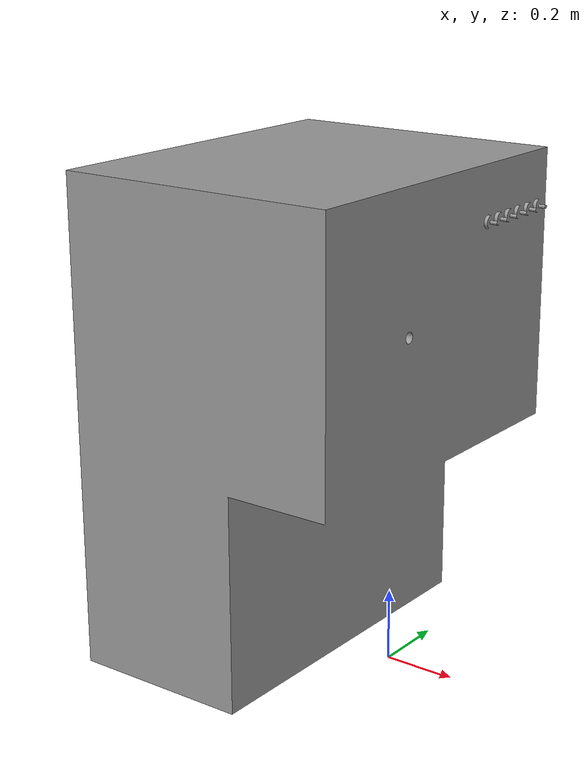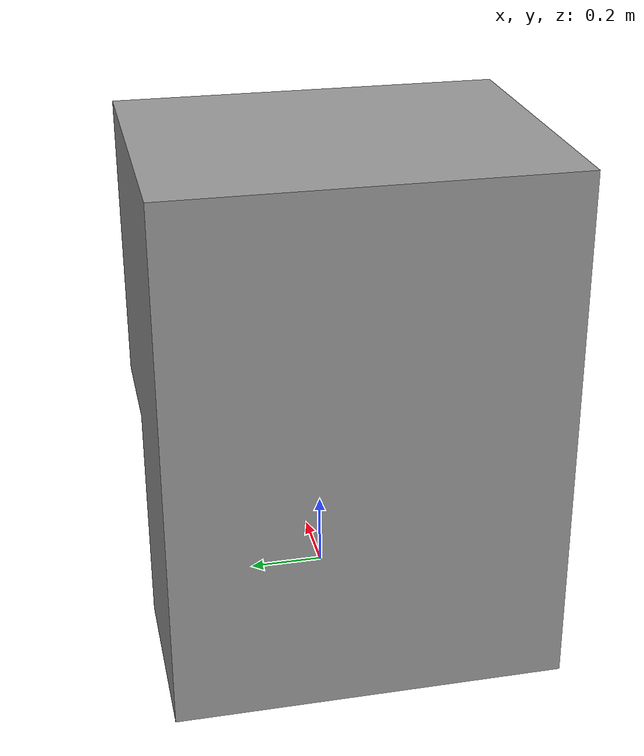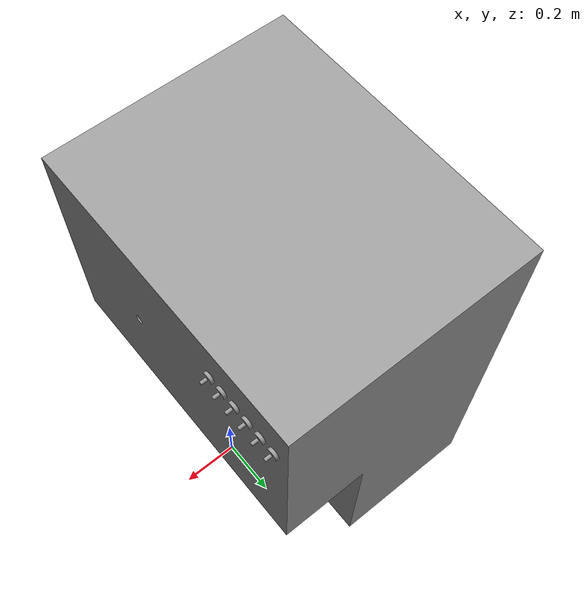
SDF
<?xml version="1.0" ?>
<sdf version="1.4">
  <model name="panel_random_wrenches">
    <!-- Panel -->
    <static>true</static>
    <link name="link_panel">
      <pose>0 0 0.975 0 0 0</pose>
      <gravity>1</gravity>
      <self_collide>1</self_collide>
      <kinematic>0</kinematic>
      <inertial>
        <mass>800</mass>
        <inertia>
          <!-- http://answers.gazebosim.org/question/4372/the-inertia-matrix-explained/ -->
          <ixx>103.75</ixx>
          <!-- for a box: ixx = 0.083 * mass * (y*y + z*z) -->
          <ixy>0.0</ixy>
          <!-- for a box: ixy = 0 -->
          <ixz>0.0</ixz>
          <!-- for a box: ixz = 0 -->
          <iyy>43.326</iyy>
          <!-- for a box: iyy = 0.083 * mass * (x*x + z*z) -->
          <iyz>0.0</iyz>
          <!-- for a box: iyz = 0 -->
          <izz>72.376</izz>
          <!-- for a box: izz = 0.083 * mass * (x*x + y*y) -->
        </inertia>
      </inertial>
      <visual name="visual">
        <pose>0 0 0 0 0 0</pose>
        <geometry>
          <mesh>
            <uri>model://panel/meshes/panel2.dae</uri>
            <scale>0.001 0.001 0.001</scale>
          </mesh>
        </geometry>
        <material>
          <script>
            <uri>file://media/materials/scripts/gazebo.material</uri>
            <name>Gazebo/Grey</name>
          </script>
          <shader type="pixel">
            <normal_map>__default__</normal_map>
          </shader>
          <ambient>0.0 0.0 0.0 1</ambient>
          <diffuse>0.0 0.0 0.0 1</diffuse>
          <specular>0.01 0.01 0.01 1</specular>
          <emissive>0 0 0 1</emissive>
        </material>
        <cast_shadows>1</cast_shadows>
        <transparency>0</transparency>
      </visual>
      <collision name="collision">
        <laser_retro>0</laser_retro>
        <max_contacts>10</max_contacts>
        <pose>0 0 0 0 0 0</pose>
        <geometry>
          <mesh>
            <uri>model://panel/meshes/panel2.dae</uri>
            <scale>0.001 0.001 0.001</scale>
          </mesh>
        </geometry>
        <surface>
          <friction>
            <ode>
              <mu>100</mu>
              <mu2>50</mu2>
            </ode>
          </friction>
          <bounce>
            <restitution_coefficient>0</restitution_coefficient>
            <threshold>1e+06</threshold>
          </bounce>
        </surface>
      </collision>
    </link>
    <static>0</static>
    <allow_auto_disable>1</allow_auto_disable>

    <!-- Marker -->

    <plugin name="mbzirc_gazebo_panel_position_plugin" filename="libmbzirc_gazebo_panel_position_plugin.so">
      <randomize_wrenches>1</randomize_wrenches>
      <randomize_location>0</randomize_location>
    </plugin>
  </model>
</sdf>
